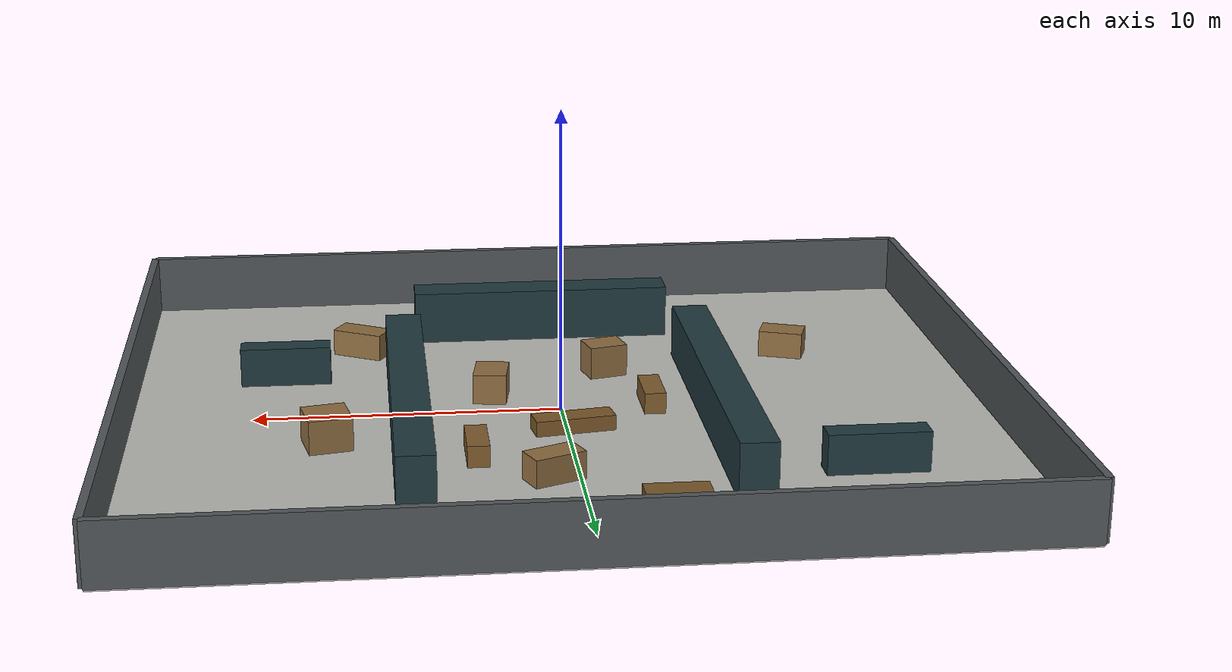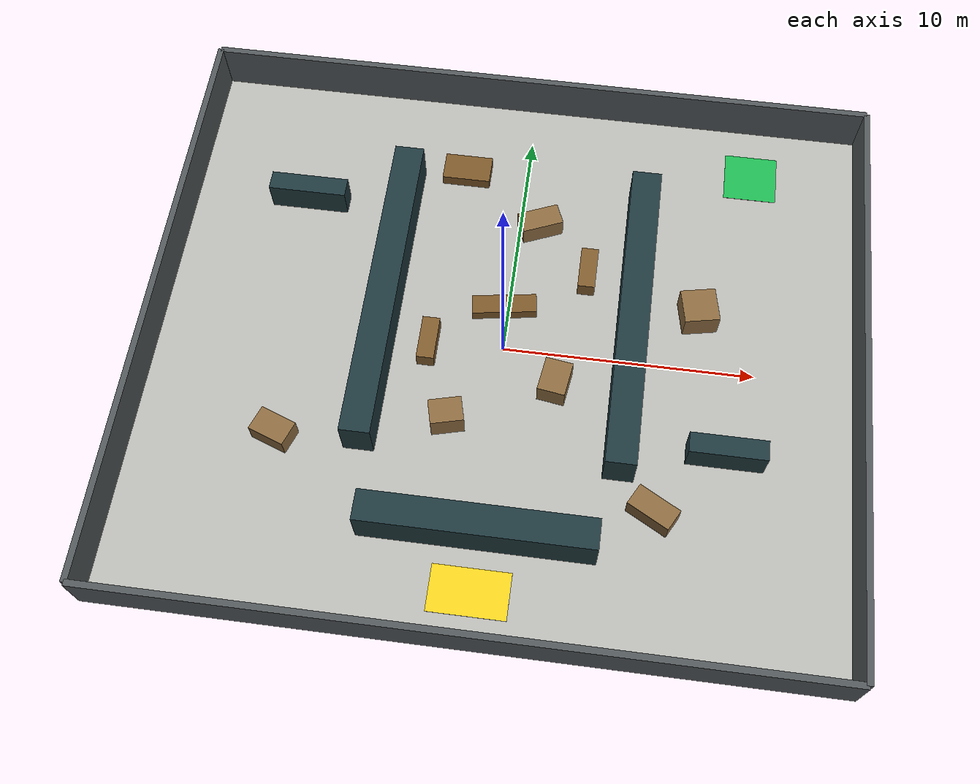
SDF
<?xml version="1.0" ?>
<sdf version="1.9">
  <world name="warehouse">
    <physics name="default_physics" type="ode">
      <max_step_size>0.004</max_step_size>
      <real_time_factor>1.0</real_time_factor>
      <real_time_update_rate>250</real_time_update_rate>
    </physics>

    <plugin name="gz::sim::systems::Physics" filename="gz-sim-physics-system"/>
    <plugin name="gz::sim::systems::UserCommands" filename="gz-sim-user-commands-system"/>
    <plugin name="gz::sim::systems::SceneBroadcaster" filename="gz-sim-scene-broadcaster-system"/>
    <plugin name="gz::sim::systems::Imu" filename="gz-sim-imu-system"/>
    <plugin name="gz::sim::systems::AirPressure" filename="gz-sim-air-pressure-system"/>
    <plugin name="gz::sim::systems::Magnetometer" filename="gz-sim-magnetometer-system"/>
    <plugin name="gz::sim::systems::NavSat" filename="gz-sim-navsat-system"/>
    <plugin name="gz::sim::systems::Sensors" filename="gz-sim-sensors-system">
      <render_engine>ogre2</render_engine>
    </plugin>

    <!-- Geo reference + magnetic field required by PX4 EKF (matches PX4 default.sdf, Zurich) -->
    <magnetic_field>6e-06 2.3e-05 -4.2e-05</magnetic_field>
    <spherical_coordinates>
      <surface_model>EARTH_WGS84</surface_model>
      <world_frame_orientation>ENU</world_frame_orientation>
      <latitude_deg>47.397971057728974</latitude_deg>
      <longitude_deg>8.546163739800146</longitude_deg>
      <elevation>0</elevation>
    </spherical_coordinates>

    <scene>
      <ambient>0.65 0.65 0.65 1</ambient>
      <background>0.78 0.82 0.86 1</background>
      <shadows>true</shadows>
    </scene>

    <light name="sun" type="directional">
      <pose>-5 -5 12 0 0 0</pose>
      <cast_shadows>true</cast_shadows>
      <intensity>1.0</intensity>
      <direction>0.4 0.2 -1</direction>
      <diffuse>0.9 0.9 0.86 1</diffuse>
      <specular>0.2 0.2 0.2 1</specular>
    </light>

    <model name="floor">
      <static>true</static>
      <link name="link">
        <collision name="collision">
          <geometry>
            <box>
              <size>28 24 0.1</size>
            </box>
          </geometry>
        </collision>
        <visual name="visual">
          <geometry>
            <box>
              <size>28 24 0.1</size>
            </box>
          </geometry>
          <material>
            <ambient>0.72 0.72 0.70 1</ambient>
            <diffuse>0.72 0.72 0.70 1</diffuse>
          </material>
        </visual>
      </link>
      <pose>0 0 -0.05 0 0 0</pose>
    </model>

    <!-- Low open-top walls. They bound the UGV workspace without blocking a drone scan. -->
    <model name="north_wall">
      <static>true</static>
      <pose>0 12 1.0 0 0 0</pose>
      <link name="link">
        <collision name="collision">
          <geometry><box><size>28 0.25 2.0</size></box></geometry>
        </collision>
        <visual name="visual">
          <geometry><box><size>28 0.25 2.0</size></box></geometry>
          <material><ambient>0.32 0.34 0.35 1</ambient><diffuse>0.32 0.34 0.35 1</diffuse></material>
        </visual>
      </link>
    </model>
    <model name="south_wall">
      <static>true</static>
      <pose>0 -12 1.0 0 0 0</pose>
      <link name="link">
        <collision name="collision">
          <geometry><box><size>28 0.25 2.0</size></box></geometry>
        </collision>
        <visual name="visual">
          <geometry><box><size>28 0.25 2.0</size></box></geometry>
          <material><ambient>0.32 0.34 0.35 1</ambient><diffuse>0.32 0.34 0.35 1</diffuse></material>
        </visual>
      </link>
    </model>
    <model name="west_wall">
      <static>true</static>
      <pose>-14 0 1.0 0 0 0</pose>
      <link name="link">
        <collision name="collision">
          <geometry><box><size>0.25 24 2.0</size></box></geometry>
        </collision>
        <visual name="visual">
          <geometry><box><size>0.25 24 2.0</size></box></geometry>
          <material><ambient>0.32 0.34 0.35 1</ambient><diffuse>0.32 0.34 0.35 1</diffuse></material>
        </visual>
      </link>
    </model>
    <model name="east_wall">
      <static>true</static>
      <pose>14 0 1.0 0 0 0</pose>
      <link name="link">
        <collision name="collision">
          <geometry><box><size>0.25 24 2.0</size></box></geometry>
        </collision>
        <visual name="visual">
          <geometry><box><size>0.25 24 2.0</size></box></geometry>
          <material><ambient>0.32 0.34 0.35 1</ambient><diffuse>0.32 0.34 0.35 1</diffuse></material>
        </visual>
      </link>
    </model>

    <!-- Shelf rows: simple box collisions, low enough for safe drone overflight. -->
    <model name="shelf_row_left">
      <static>true</static>
      <pose>-5.0 1.5 0.9 0 0 0</pose>
      <link name="link">
        <collision name="collision"><geometry><box><size>1.2 13.0 1.8</size></box></geometry></collision>
        <visual name="visual">
          <geometry><box><size>1.2 13.0 1.8</size></box></geometry>
          <material><ambient>0.12 0.22 0.24 1</ambient><diffuse>0.12 0.22 0.24 1</diffuse></material>
        </visual>
      </link>
    </model>
    <model name="shelf_row_right">
      <static>true</static>
      <pose>5.0 1.5 0.9 0 0 0</pose>
      <link name="link">
        <collision name="collision"><geometry><box><size>1.2 13.0 1.8</size></box></geometry></collision>
        <visual name="visual">
          <geometry><box><size>1.2 13.0 1.8</size></box></geometry>
          <material><ambient>0.12 0.22 0.24 1</ambient><diffuse>0.12 0.22 0.24 1</diffuse></material>
        </visual>
      </link>
    </model>
    <model name="back_shelf">
      <static>true</static>
      <pose>0 -7.8 0.9 0 0 0</pose>
      <link name="link">
        <collision name="collision"><geometry><box><size>9.0 1.2 1.8</size></box></geometry></collision>
        <visual name="visual">
          <geometry><box><size>9.0 1.2 1.8</size></box></geometry>
          <material><ambient>0.12 0.22 0.24 1</ambient><diffuse>0.12 0.22 0.24 1</diffuse></material>
        </visual>
      </link>
    </model>

    <!-- UGV-relevant box obstacles. -->
    <model name="box_stack_1">
      <static>true</static>
      <pose>-1.8 -3.4 0.55 0 0 0.25</pose>
      <link name="link">
        <collision name="collision"><geometry><box><size>1.3 1.0 1.1</size></box></geometry></collision>
        <visual name="visual">
          <geometry><box><size>1.3 1.0 1.1</size></box></geometry>
          <material><ambient>0.55 0.42 0.25 1</ambient><diffuse>0.55 0.42 0.25 1</diffuse></material>
        </visual>
      </link>
    </model>
    <model name="box_stack_2">
      <static>true</static>
      <pose>2.2 -1.4 0.5 0 0 -0.15</pose>
      <link name="link">
        <collision name="collision"><geometry><box><size>1.1 1.4 1.0</size></box></geometry></collision>
        <visual name="visual">
          <geometry><box><size>1.1 1.4 1.0</size></box></geometry>
          <material><ambient>0.55 0.42 0.25 1</ambient><diffuse>0.55 0.42 0.25 1</diffuse></material>
        </visual>
      </link>
    </model>
    <model name="box_stack_3">
      <static>true</static>
      <pose>0.8 5.8 0.45 0 0 0.4</pose>
      <link name="link">
        <collision name="collision"><geometry><box><size>1.7 0.9 0.9</size></box></geometry></collision>
        <visual name="visual">
          <geometry><box><size>1.7 0.9 0.9</size></box></geometry>
          <material><ambient>0.55 0.42 0.25 1</ambient><diffuse>0.55 0.42 0.25 1</diffuse></material>
        </visual>
      </link>
    </model>
    <model name="pallet_obstacle">
      <static>true</static>
      <pose>-2.6 8.2 0.25 0 0 0</pose>
      <link name="link">
        <collision name="collision"><geometry><box><size>2.0 1.2 0.5</size></box></geometry></collision>
        <visual name="visual">
          <geometry><box><size>2.0 1.2 0.5</size></box></geometry>
          <material><ambient>0.48 0.34 0.16 1</ambient><diffuse>0.48 0.34 0.16 1</diffuse></material>
        </visual>
      </link>
    </model>

    <!-- Extra low obstacles for path-planning evaluation. They form a few
         partial blockages while preserving at least one UGV-width route. -->
    <model name="box_stack_4">
      <static>true</static>
      <pose>-8.3 -4.8 0.45 0 0 -0.35</pose>
      <link name="link">
        <collision name="collision"><geometry><box><size>1.5 1.0 0.9</size></box></geometry></collision>
        <visual name="visual">
          <geometry><box><size>1.5 1.0 0.9</size></box></geometry>
          <material><ambient>0.55 0.42 0.25 1</ambient><diffuse>0.55 0.42 0.25 1</diffuse></material>
        </visual>
      </link>
    </model>
    <model name="box_stack_5">
      <static>true</static>
      <pose>7.6 2.4 0.55 0 0 0.2</pose>
      <link name="link">
        <collision name="collision"><geometry><box><size>1.4 1.4 1.1</size></box></geometry></collision>
        <visual name="visual">
          <geometry><box><size>1.4 1.4 1.1</size></box></geometry>
          <material><ambient>0.55 0.42 0.25 1</ambient><diffuse>0.55 0.42 0.25 1</diffuse></material>
        </visual>
      </link>
    </model>
    <model name="box_stack_6">
      <static>true</static>
      <pose>6.4 -6.2 0.45 0 0 -0.5</pose>
      <link name="link">
        <collision name="collision"><geometry><box><size>1.8 0.9 0.9</size></box></geometry></collision>
        <visual name="visual">
          <geometry><box><size>1.8 0.9 0.9</size></box></geometry>
          <material><ambient>0.55 0.42 0.25 1</ambient><diffuse>0.55 0.42 0.25 1</diffuse></material>
        </visual>
      </link>
    </model>
    <model name="short_shelf_front_left">
      <static>true</static>
      <pose>-9.0 6.0 0.65 0 0 1.5708</pose>
      <link name="link">
        <collision name="collision"><geometry><box><size>0.8 3.2 1.3</size></box></geometry></collision>
        <visual name="visual">
          <geometry><box><size>0.8 3.2 1.3</size></box></geometry>
          <material><ambient>0.12 0.22 0.24 1</ambient><diffuse>0.12 0.22 0.24 1</diffuse></material>
        </visual>
      </link>
    </model>
    <model name="short_shelf_back_right">
      <static>true</static>
      <pose>9.0 -3.6 0.65 0 0 1.5708</pose>
      <link name="link">
        <collision name="collision"><geometry><box><size>0.8 3.0 1.3</size></box></geometry></collision>
        <visual name="visual">
          <geometry><box><size>0.8 3.0 1.3</size></box></geometry>
          <material><ambient>0.12 0.22 0.24 1</ambient><diffuse>0.12 0.22 0.24 1</diffuse></material>
        </visual>
      </link>
    </model>
    <model name="center_pallet_barrier">
      <static>true</static>
      <pose>-0.2 1.8 0.25 0 0 0.15</pose>
      <link name="link">
        <collision name="collision"><geometry><box><size>2.6 0.8 0.5</size></box></geometry></collision>
        <visual name="visual">
          <geometry><box><size>2.6 0.8 0.5</size></box></geometry>
          <material><ambient>0.48 0.34 0.16 1</ambient><diffuse>0.48 0.34 0.16 1</diffuse></material>
        </visual>
      </link>
    </model>
    <model name="narrow_passage_marker_left">
      <static>true</static>
      <pose>-3.0 -0.2 0.35 0 0 0</pose>
      <link name="link">
        <collision name="collision"><geometry><box><size>0.7 1.8 0.7</size></box></geometry></collision>
        <visual name="visual">
          <geometry><box><size>0.7 1.8 0.7</size></box></geometry>
          <material><ambient>0.50 0.36 0.18 1</ambient><diffuse>0.50 0.36 0.18 1</diffuse></material>
        </visual>
      </link>
    </model>
    <model name="narrow_passage_marker_right">
      <static>true</static>
      <pose>3.0 3.8 0.35 0 0 0</pose>
      <link name="link">
        <collision name="collision"><geometry><box><size>0.7 1.8 0.7</size></box></geometry></collision>
        <visual name="visual">
          <geometry><box><size>0.7 1.8 0.7</size></box></geometry>
          <material><ambient>0.50 0.36 0.18 1</ambient><diffuse>0.50 0.36 0.18 1</diffuse></material>
        </visual>
      </link>
    </model>

    <!-- Visual-only aisle markings make the occupancy result easier to inspect. -->
    <model name="start_zone">
      <static>true</static>
      <pose>0 -10.0 0.006 0 0 0</pose>
      <link name="link">
        <visual name="visual">
          <geometry><box><size>3.0 1.8 0.01</size></box></geometry>
          <material><ambient>0.95 0.82 0.12 1</ambient><diffuse>0.95 0.82 0.12 1</diffuse></material>
        </visual>
      </link>
    </model>
    <model name="goal_zone">
      <static>true</static>
      <pose>9.5 9.5 0.006 0 0 0</pose>
      <link name="link">
        <visual name="visual">
          <geometry><box><size>2.2 2.2 0.01</size></box></geometry>
          <material><ambient>0.12 0.72 0.32 1</ambient><diffuse>0.12 0.72 0.32 1</diffuse></material>
        </visual>
      </link>
    </model>
  </world>
</sdf>
